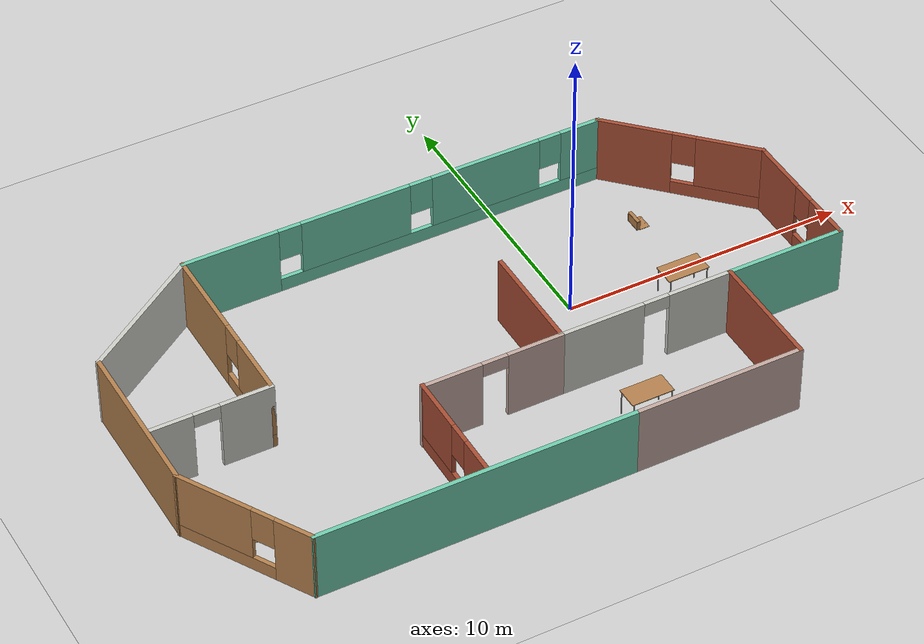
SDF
<sdf version="1.6">
 <world name="default">
  <light name="sun" type="directional">
   <pose>0 0 10 0 -0 0</pose>
   <diffuse>0.8 0.8 0.8 1</diffuse>
   <specular>0.2 0.2 0.2 1</specular>
   <attenuation>
    <range>1000</range>
    <constant>0.9</constant>
    <linear>0.01</linear>
    <quadratic>0.001</quadratic>
   </attenuation>
   <direction>-0.5 0.1 -0.9</direction>
  </light>
  <model name="ground_plane">
   <static>1</static>
   <link name="link">
    <collision name="collision">
     <geometry><plane><normal>0 0 1</normal><size>100 100</size></plane></geometry>
     <surface><friction><ode><mu>100</mu><mu2>50</mu2></ode></friction></surface>
    </collision>
    <visual name="visual">
     <cast_shadows>0</cast_shadows>
     <geometry><plane><normal>0 0 1</normal><size>100 100</size></plane></geometry>
     <material>
      <script><uri>file://media/materials/scripts/gazebo.material</uri><name>Gazebo/Grey</name></script>
     </material>
    </visual>
   </link>
  </model>
  <gravity>0 0 -9.8</gravity>
  <magnetic_field>6e-06 2.3e-05 -4.2e-05</magnetic_field>
  <atmosphere type="adiabatic"/>
  <physics name="default_physics" default="0" type="ode">
   <max_step_size>0.001</max_step_size>
   <real_time_factor>1</real_time_factor>
   <real_time_update_rate>1000</real_time_update_rate>
  </physics>
  <scene><ambient>0.4 0.4 0.4 1</ambient><background>0.7 0.7 0.7 1</background><shadows>1</shadows></scene>
  <spherical_coordinates>
   <surface_model>EARTH_WGS84</surface_model>
   <latitude_deg>0</latitude_deg>
   <longitude_deg>0</longitude_deg>
   <elevation>0</elevation>
   <heading_deg>0</heading_deg>
  </spherical_coordinates>
  <model name="Ammar2">
   <pose>-3.62577 -1.02243 0 0 -0 0</pose>
   <link name="Wall_10">
    <collision name="Wall_10_Collision">
     <geometry><box><size>5.75 0.15 2.5</size></box></geometry>
     <pose>0 0 1.25 0 -0 0</pose>
    </collision>
    <visual name="Wall_10_Visual">
     <pose>0 0 1.25 0 -0 0</pose>
     <geometry><box><size>5.75 0.15 2.5</size></box></geometry>
     <material>
      <script><uri>file://media/materials/scripts/gazebo.material</uri><name>Gazebo/Wood</name></script>
      <ambient>1 1 1 1</ambient>
     </material>
     <meta><layer>0</layer></meta>
    </visual>
    <pose>-11.6134 0.668517 0 0 -0 1.5708</pose>
   </link>
   <link name="Wall_11">
    <collision name="Wall_11_Collision">
     <geometry><box><size>5.20233 0.15 2.5</size></box></geometry>
     <pose>0 0 1.25 0 -0 0</pose>
    </collision>
    <visual name="Wall_11_Visual">
     <pose>0 0 1.25 0 -0 0</pose>
     <geometry><box><size>5.20233 0.15 2.5</size></box></geometry>
     <material>
      <script><uri>file://media/materials/scripts/gazebo.material</uri><name>Gazebo/CeilingTiled</name></script>
      <ambient>1 1 1 1</ambient>
     </material>
     <meta><layer>0</layer></meta>
    </visual>
    <pose>-9.53079 4.8983 0 0 -0 0.601635</pose>
   </link>
   <link name="Wall_14">
    <pose>4.46161 -2.23171 0 0 -0 3.14159</pose>
    <visual name="Wall_14_Visual_0">
     <pose>-1.95719 0 1.25 0 -0 0</pose>
     <geometry><box><size>2.33562 0.15 2.5</size></box></geometry>
     <material>
      <script><uri>file://media/materials/scripts/gazebo.material</uri><name>Gazebo/CeilingTiled</name></script>
      <ambient>0.435294 0.796078 0.67451 1</ambient>
     </material>
     <meta><layer>0</layer></meta>
    </visual>
    <collision name="Wall_14_Collision_0">
     <geometry><box><size>2.33562 0.15 2.5</size></box></geometry>
     <pose>-1.95719 0 1.25 0 -0 0</pose>
    </collision>
    <visual name="Wall_14_Visual_1">
     <pose>1.61781 0 1.25 0 -0 0</pose>
     <geometry><box><size>3.01438 0.15 2.5</size></box></geometry>
     <material>
      <script><uri>file://media/materials/scripts/gazebo.material</uri><name>Gazebo/CeilingTiled</name></script>
      <ambient>0.435294 0.796078 0.67451 1</ambient>
     </material>
     <meta><layer>0</layer></meta>
    </visual>
    <collision name="Wall_14_Collision_1">
     <geometry><box><size>3.01438 0.15 2.5</size></box></geometry>
     <pose>1.61781 0 1.25 0 -0 0</pose>
    </collision>
    <visual name="Wall_14_Visual_2">
     <pose>-0.339383 0 2.25 0 -0 0</pose>
     <geometry><box><size>0.9 0.15 0.5</size></box></geometry>
     <material>
      <script><uri>file://media/materials/scripts/gazebo.material</uri><name>Gazebo/CeilingTiled</name></script>
      <ambient>0.435294 0.796078 0.67451 1</ambient>
     </material>
     <meta><layer>0</layer></meta>
    </visual>
    <collision name="Wall_14_Collision_2">
     <geometry><box><size>0.9 0.15 0.5</size></box></geometry>
     <pose>-0.339383 0 2.25 0 -0 0</pose>
    </collision>
   </link>
   <link name="Wall_15">
    <collision name="Wall_15_Collision">
     <geometry><box><size>4 0.15 2.5</size></box></geometry>
     <pose>0 0 1.25 0 -0 0</pose>
    </collision>
    <visual name="Wall_15_Visual">
     <pose>0 0 1.25 0 -0 0</pose>
     <geometry><box><size>4 0.15 2.5</size></box></geometry>
     <material>
      <script><uri>file://media/materials/scripts/gazebo.material</uri><name>Gazebo/Bricks</name></script>
      <ambient>0.760784 0.662745 0.627451 1</ambient>
     </material>
     <meta><layer>0</layer></meta>
    </visual>
    <pose>1.41161 -0.306706 0 0 -0 1.5708</pose>
   </link>
   <link name="Wall_17">
    <pose>-3.41847 -4.25285 0 0 -0 1.5708</pose>
    <visual name="Wall_17_Visual_0">
     <pose>-1.42299 0 1.25 0 -0 0</pose>
     <geometry><box><size>1.40401 0.15 2.5</size></box></geometry>
     <material>
      <script><uri>file://media/materials/scripts/gazebo.material</uri><name>Gazebo/Bricks</name></script>
      <ambient>1 1 1 1</ambient>
     </material>
     <meta><layer>0</layer></meta>
    </visual>
    <collision name="Wall_17_Collision_0">
     <geometry><box><size>1.40401 0.15 2.5</size></box></geometry>
     <pose>-1.42299 0 1.25 0 -0 0</pose>
    </collision>
    <visual name="Wall_17_Visual_1">
     <pose>0.702006 0 0.25 0 -0 0</pose>
     <geometry><box><size>2.84599 0.15 0.5</size></box></geometry>
     <material>
      <script><uri>file://media/materials/scripts/gazebo.material</uri><name>Gazebo/Bricks</name></script>
      <ambient>1 1 1 1</ambient>
     </material>
     <meta><layer>0</layer></meta>
    </visual>
    <collision name="Wall_17_Collision_1">
     <geometry><box><size>2.84599 0.15 0.5</size></box></geometry>
     <pose>0.702006 0 0.25 0 -0 0</pose>
    </collision>
    <visual name="Wall_17_Visual_2">
     <pose>1.10201 0 1.5 0 -0 0</pose>
     <geometry><box><size>2.04599 0.15 2</size></box></geometry>
     <material>
      <script><uri>file://media/materials/scripts/gazebo.material</uri><name>Gazebo/Bricks</name></script>
      <ambient>1 1 1 1</ambient>
     </material>
     <meta><layer>0</layer></meta>
    </visual>
    <collision name="Wall_17_Collision_2">
     <geometry><box><size>2.04599 0.15 2</size></box></geometry>
     <pose>1.10201 0 1.5 0 -0 0</pose>
    </collision>
    <visual name="Wall_17_Visual_3">
     <pose>-0.320987 0 1.9 0 -0 0</pose>
     <geometry><box><size>0.8 0.15 1.2</size></box></geometry>
     <material>
      <script><uri>file://media/materials/scripts/gazebo.material</uri><name>Gazebo/Bricks</name></script>
      <ambient>1 1 1 1</ambient>
     </material>
     <meta><layer>0</layer></meta>
    </visual>
    <collision name="Wall_17_Collision_3">
     <geometry><box><size>0.8 0.15 1.2</size></box></geometry>
     <pose>-0.320987 0 1.9 0 -0 0</pose>
    </collision>
   </link>
   <link name="Wall_19">
    <pose>-7.44819 3.15309 0 0 0 -1.5708</pose>
    <visual name="Wall_19_Visual_0">
     <pose>-1.59246 0 1.25 0 -0 0</pose>
     <geometry><box><size>3.31507 0.15 2.5</size></box></geometry>
     <material>
      <script><uri>file://media/materials/scripts/gazebo.material</uri><name>Gazebo/Wood</name></script>
      <ambient>1 1 1 1</ambient>
     </material>
     <meta><layer>0</layer></meta>
    </visual>
    <collision name="Wall_19_Collision_0">
     <geometry><box><size>3.31507 0.15 2.5</size></box></geometry>
     <pose>-1.59246 0 1.25 0 -0 0</pose>
    </collision>
    <visual name="Wall_19_Visual_1">
     <pose>1.65754 0 0.25 0 -0 0</pose>
     <geometry><box><size>3.18493 0.15 0.5</size></box></geometry>
     <material>
      <script><uri>file://media/materials/scripts/gazebo.material</uri><name>Gazebo/Wood</name></script>
      <ambient>1 1 1 1</ambient>
     </material>
     <meta><layer>0</layer></meta>
    </visual>
    <collision name="Wall_19_Collision_1">
     <geometry><box><size>3.18493 0.15 0.5</size></box></geometry>
     <pose>1.65754 0 0.25 0 -0 0</pose>
    </collision>
    <visual name="Wall_19_Visual_2">
     <pose>2.05754 0 1.5 0 -0 0</pose>
     <geometry><box><size>2.38493 0.15 2</size></box></geometry>
     <material>
      <script><uri>file://media/materials/scripts/gazebo.material</uri><name>Gazebo/Wood</name></script>
      <ambient>1 1 1 1</ambient>
     </material>
     <meta><layer>0</layer></meta>
    </visual>
    <collision name="Wall_19_Collision_2">
     <geometry><box><size>2.38493 0.15 2</size></box></geometry>
     <pose>2.05754 0 1.5 0 -0 0</pose>
    </collision>
    <visual name="Wall_19_Visual_3">
     <pose>0.465074 0 1.9 0 -0 0</pose>
     <geometry><box><size>0.8 0.15 1.2</size></box></geometry>
     <material>
      <script><uri>file://media/materials/scripts/gazebo.material</uri><name>Gazebo/Wood</name></script>
      <ambient>1 1 1 1</ambient>
     </material>
     <meta><layer>0</layer></meta>
    </visual>
    <collision name="Wall_19_Collision_3">
     <geometry><box><size>0.8 0.15 1.2</size></box></geometry>
     <pose>0.465074 0 1.9 0 -0 0</pose>
    </collision>
   </link>
   <link name="Wall_2">
    <pose>0.101809 6.32809 0 0 -0 0</pose>
    <visual name="Wall_2_Visual_0">
     <pose>-5.91894 0 1.25 0 -0 0</pose>
     <geometry><box><size>3.41212 0.15 2.5</size></box></geometry>
     <material>
      <script><uri>file://media/materials/scripts/gazebo.material</uri><name>Gazebo/Grey</name></script>
      <ambient>0.435294 0.796078 0.67451 1</ambient>
     </material>
     <meta><layer>0</layer></meta>
    </visual>
    <collision name="Wall_2_Collision_0">
     <geometry><box><size>3.41212 0.15 2.5</size></box></geometry>
     <pose>-5.91894 0 1.25 0 -0 0</pose>
    </collision>
    <visual name="Wall_2_Visual_1">
     <pose>1.70606 0 0.25 0 -0 0</pose>
     <geometry><box><size>11.8379 0.15 0.5</size></box></geometry>
     <material>
      <script><uri>file://media/materials/scripts/gazebo.material</uri><name>Gazebo/Grey</name></script>
      <ambient>0.435294 0.796078 0.67451 1</ambient>
     </material>
     <meta><layer>0</layer></meta>
    </visual>
    <collision name="Wall_2_Collision_1">
     <geometry><box><size>11.8379 0.15 0.5</size></box></geometry>
     <pose>1.70606 0 0.25 0 -0 0</pose>
    </collision>
    <visual name="Wall_2_Visual_2">
     <pose>-1.44546 0 1.5 0 -0 0</pose>
     <geometry><box><size>3.93484 0.15 2</size></box></geometry>
     <material>
      <script><uri>file://media/materials/scripts/gazebo.material</uri><name>Gazebo/Grey</name></script>
      <ambient>0.435294 0.796078 0.67451 1</ambient>
     </material>
     <meta><layer>0</layer></meta>
    </visual>
    <collision name="Wall_2_Collision_2">
     <geometry><box><size>3.93484 0.15 2</size></box></geometry>
     <pose>-1.44546 0 1.5 0 -0 0</pose>
    </collision>
    <visual name="Wall_2_Visual_3">
     <pose>3.31597 0 1.5 0 -0 0</pose>
     <geometry><box><size>3.98804 0.15 2</size></box></geometry>
     <material>
      <script><uri>file://media/materials/scripts/gazebo.material</uri><name>Gazebo/Grey</name></script>
      <ambient>0.435294 0.796078 0.67451 1</ambient>
     </material>
     <meta><layer>0</layer></meta>
    </visual>
    <collision name="Wall_2_Collision_3">
     <geometry><box><size>3.98804 0.15 2</size></box></geometry>
     <pose>3.31597 0 1.5 0 -0 0</pose>
    </collision>
    <visual name="Wall_2_Visual_4">
     <pose>6.86749 0 1.5 0 -0 0</pose>
     <geometry><box><size>1.51501 0.15 2</size></box></geometry>
     <material>
      <script><uri>file://media/materials/scripts/gazebo.material</uri><name>Gazebo/Grey</name></script>
      <ambient>0.435294 0.796078 0.67451 1</ambient>
     </material>
     <meta><layer>0</layer></meta>
    </visual>
    <collision name="Wall_2_Collision_4">
     <geometry><box><size>1.51501 0.15 2</size></box></geometry>
     <pose>6.86749 0 1.5 0 -0 0</pose>
    </collision>
    <visual name="Wall_2_Visual_5">
     <pose>-3.81288 0 1.9 0 -0 0</pose>
     <geometry><box><size>0.8 0.15 1.2</size></box></geometry>
     <material>
      <script><uri>file://media/materials/scripts/gazebo.material</uri><name>Gazebo/Grey</name></script>
      <ambient>0.435294 0.796078 0.67451 1</ambient>
     </material>
     <meta><layer>0</layer></meta>
    </visual>
    <collision name="Wall_2_Collision_5">
     <geometry><box><size>0.8 0.15 1.2</size></box></geometry>
     <pose>-3.81288 0 1.9 0 -0 0</pose>
    </collision>
    <visual name="Wall_2_Visual_6">
     <pose>0.921953 0 1.9 0 -0 0</pose>
     <geometry><box><size>0.8 0.15 1.2</size></box></geometry>
     <material>
      <script><uri>file://media/materials/scripts/gazebo.material</uri><name>Gazebo/Grey</name></script>
      <ambient>0.435294 0.796078 0.67451 1</ambient>
     </material>
     <meta><layer>0</layer></meta>
    </visual>
    <collision name="Wall_2_Collision_6">
     <geometry><box><size>0.8 0.15 1.2</size></box></geometry>
     <pose>0.921953 0 1.9 0 -0 0</pose>
    </collision>
    <visual name="Wall_2_Visual_7">
     <pose>5.70999 0 1.9 0 -0 0</pose>
     <geometry><box><size>0.8 0.15 1.2</size></box></geometry>
     <material>
      <script><uri>file://media/materials/scripts/gazebo.material</uri><name>Gazebo/Grey</name></script>
      <ambient>0.435294 0.796078 0.67451 1</ambient>
     </material>
     <meta><layer>0</layer></meta>
    </visual>
    <collision name="Wall_2_Collision_7">
     <geometry><box><size>0.8 0.15 1.2</size></box></geometry>
     <pose>5.70999 0 1.9 0 -0 0</pose>
    </collision>
   </link>
   <link name="Wall_20">
    <pose>-9.49819 -0.021908 0 0 -0 3.14159</pose>
    <visual name="Wall_20_Visual_0">
     <pose>-1.21514 0 1.25 0 -0 0</pose>
     <geometry><box><size>1.81973 0.15 2.5</size></box></geometry>
     <material>
      <script><uri>file://media/materials/scripts/gazebo.material</uri><name>Gazebo/CeilingTiled</name></script>
      <ambient>1 1 1 1</ambient>
     </material>
     <meta><layer>0</layer></meta>
    </visual>
    <collision name="Wall_20_Collision_0">
     <geometry><box><size>1.81973 0.15 2.5</size></box></geometry>
     <pose>-1.21514 0 1.25 0 -0 0</pose>
    </collision>
    <visual name="Wall_20_Visual_1">
     <pose>1.35986 0 1.25 0 -0 0</pose>
     <geometry><box><size>1.53027 0.15 2.5</size></box></geometry>
     <material>
      <script><uri>file://media/materials/scripts/gazebo.material</uri><name>Gazebo/CeilingTiled</name></script>
      <ambient>1 1 1 1</ambient>
     </material>
     <meta><layer>0</layer></meta>
    </visual>
    <collision name="Wall_20_Collision_1">
     <geometry><box><size>1.53027 0.15 2.5</size></box></geometry>
     <pose>1.35986 0 1.25 0 -0 0</pose>
    </collision>
    <visual name="Wall_20_Visual_2">
     <pose>0.144727 0 2.25 0 -0 0</pose>
     <geometry><box><size>0.9 0.15 0.5</size></box></geometry>
     <material>
      <script><uri>file://media/materials/scripts/gazebo.material</uri><name>Gazebo/CeilingTiled</name></script>
      <ambient>1 1 1 1</ambient>
     </material>
     <meta><layer>0</layer></meta>
    </visual>
    <collision name="Wall_20_Collision_2">
     <geometry><box><size>0.9 0.15 0.5</size></box></geometry>
     <pose>0.144727 0 2.25 0 -0 0</pose>
    </collision>
   </link>
   <link name="Wall_22">
    <pose>-1.01339 -2.23171 0 0 -0 3.14159</pose>
    <visual name="Wall_22_Visual_0">
     <pose>-1.50937 0 1.25 0 -0 0</pose>
     <geometry><box><size>1.98126 0.15 2.5</size></box></geometry>
     <material>
      <script><uri>file://media/materials/scripts/gazebo.material</uri><name>Gazebo/Grey</name></script>
      <ambient>0.760784 0.662745 0.627451 1</ambient>
     </material>
     <meta><layer>0</layer></meta>
    </visual>
    <collision name="Wall_22_Collision_0">
     <geometry><box><size>1.98126 0.15 2.5</size></box></geometry>
     <pose>-1.50937 0 1.25 0 -0 0</pose>
    </collision>
    <visual name="Wall_22_Visual_1">
     <pose>1.44063 0 1.25 0 -0 0</pose>
     <geometry><box><size>2.11874 0.15 2.5</size></box></geometry>
     <material>
      <script><uri>file://media/materials/scripts/gazebo.material</uri><name>Gazebo/Grey</name></script>
      <ambient>0.760784 0.662745 0.627451 1</ambient>
     </material>
     <meta><layer>0</layer></meta>
    </visual>
    <collision name="Wall_22_Collision_1">
     <geometry><box><size>2.11874 0.15 2.5</size></box></geometry>
     <pose>1.44063 0 1.25 0 -0 0</pose>
    </collision>
    <visual name="Wall_22_Visual_2">
     <pose>-0.06874 0 2.25 0 -0 0</pose>
     <geometry><box><size>0.9 0.15 0.5</size></box></geometry>
     <material>
      <script><uri>file://media/materials/scripts/gazebo.material</uri><name>Gazebo/Grey</name></script>
      <ambient>0.760784 0.662745 0.627451 1</ambient>
     </material>
     <meta><layer>0</layer></meta>
    </visual>
    <collision name="Wall_22_Collision_2">
     <geometry><box><size>0.9 0.15 0.5</size></box></geometry>
     <pose>-0.06874 0 2.25 0 -0 0</pose>
    </collision>
   </link>
   <link name="Wall_3">
    <pose>9.63171 4.34819 0 0 0 -0.785398</pose>
    <visual name="Wall_3_Visual_0">
     <pose>-1.56407 0 1.25 0 -0 0</pose>
     <geometry><box><size>2.62185 0.15 2.5</size></box></geometry>
     <material>
      <script><uri>file://media/materials/scripts/gazebo.material</uri><name>Gazebo/Bricks</name></script>
      <ambient>1 1 1 1</ambient>
     </material>
     <meta><layer>0</layer></meta>
    </visual>
    <collision name="Wall_3_Collision_0">
     <geometry><box><size>2.62185 0.15 2.5</size></box></geometry>
     <pose>-1.56407 0 1.25 0 -0 0</pose>
    </collision>
    <visual name="Wall_3_Visual_1">
     <pose>1.31093 0 0.25 0 -0 0</pose>
     <geometry><box><size>3.12815 0.15 0.5</size></box></geometry>
     <material>
      <script><uri>file://media/materials/scripts/gazebo.material</uri><name>Gazebo/Bricks</name></script>
      <ambient>1 1 1 1</ambient>
     </material>
     <meta><layer>0</layer></meta>
    </visual>
    <collision name="Wall_3_Collision_1">
     <geometry><box><size>3.12815 0.15 0.5</size></box></geometry>
     <pose>1.31093 0 0.25 0 -0 0</pose>
    </collision>
    <visual name="Wall_3_Visual_2">
     <pose>1.71093 0 1.5 0 -0 0</pose>
     <geometry><box><size>2.32815 0.15 2</size></box></geometry>
     <material>
      <script><uri>file://media/materials/scripts/gazebo.material</uri><name>Gazebo/Bricks</name></script>
      <ambient>1 1 1 1</ambient>
     </material>
     <meta><layer>0</layer></meta>
    </visual>
    <collision name="Wall_3_Collision_2">
     <geometry><box><size>2.32815 0.15 2</size></box></geometry>
     <pose>1.71093 0 1.5 0 -0 0</pose>
    </collision>
    <visual name="Wall_3_Visual_3">
     <pose>0.146854 0 1.9 0 -0 0</pose>
     <geometry><box><size>0.8 0.15 1.2</size></box></geometry>
     <material>
      <script><uri>file://media/materials/scripts/gazebo.material</uri><name>Gazebo/Bricks</name></script>
      <ambient>1 1 1 1</ambient>
     </material>
     <meta><layer>0</layer></meta>
    </visual>
    <collision name="Wall_3_Collision_3">
     <geometry><box><size>0.8 0.15 1.2</size></box></geometry>
     <pose>0.146854 0 1.9 0 -0 0</pose>
    </collision>
   </link>
   <link name="Wall_4">
    <pose>11.6116 0.068294 0 0 0 -1.5708</pose>
    <visual name="Wall_4_Visual_0">
     <pose>-1.28755 0 1.25 0 -0 0</pose>
     <geometry><box><size>2.1749 0.15 2.5</size></box></geometry>
     <material>
      <script><uri>file://media/materials/scripts/gazebo.material</uri><name>Gazebo/Bricks</name></script>
      <ambient>1 1 1 1</ambient>
     </material>
     <meta><layer>0</layer></meta>
    </visual>
    <collision name="Wall_4_Collision_0">
     <geometry><box><size>2.1749 0.15 2.5</size></box></geometry>
     <pose>-1.28755 0 1.25 0 -0 0</pose>
    </collision>
    <visual name="Wall_4_Visual_1">
     <pose>1.08745 0 0.25 0 -0 0</pose>
     <geometry><box><size>2.5751 0.15 0.5</size></box></geometry>
     <material>
      <script><uri>file://media/materials/scripts/gazebo.material</uri><name>Gazebo/Bricks</name></script>
      <ambient>1 1 1 1</ambient>
     </material>
     <meta><layer>0</layer></meta>
    </visual>
    <collision name="Wall_4_Collision_1">
     <geometry><box><size>2.5751 0.15 0.5</size></box></geometry>
     <pose>1.08745 0 0.25 0 -0 0</pose>
    </collision>
    <visual name="Wall_4_Visual_2">
     <pose>1.48745 0 1.5 0 -0 0</pose>
     <geometry><box><size>1.7751 0.15 2</size></box></geometry>
     <material>
      <script><uri>file://media/materials/scripts/gazebo.material</uri><name>Gazebo/Bricks</name></script>
      <ambient>1 1 1 1</ambient>
     </material>
     <meta><layer>0</layer></meta>
    </visual>
    <collision name="Wall_4_Collision_2">
     <geometry><box><size>1.7751 0.15 2</size></box></geometry>
     <pose>1.48745 0 1.5 0 -0 0</pose>
    </collision>
    <visual name="Wall_4_Visual_3">
     <pose>0.199897 0 1.9 0 -0 0</pose>
     <geometry><box><size>0.8 0.15 1.2</size></box></geometry>
     <material>
      <script><uri>file://media/materials/scripts/gazebo.material</uri><name>Gazebo/Bricks</name></script>
      <ambient>1 1 1 1</ambient>
     </material>
     <meta><layer>0</layer></meta>
    </visual>
    <collision name="Wall_4_Collision_3">
     <geometry><box><size>0.8 0.15 1.2</size></box></geometry>
     <pose>0.199897 0 1.9 0 -0 0</pose>
    </collision>
   </link>
   <link name="Wall_5">
    <collision name="Wall_5_Collision">
     <geometry><box><size>4.25 0.15 2.5</size></box></geometry>
     <pose>0 0 1.25 0 -0 0</pose>
    </collision>
    <visual name="Wall_5_Visual">
     <pose>0 0 1.25 0 -0 0</pose>
     <geometry><box><size>4.25 0.15 2.5</size></box></geometry>
     <material>
      <script><uri>file://media/materials/scripts/gazebo.material</uri><name>Gazebo/Grey</name></script>
      <ambient>0.435294 0.796078 0.67451 1</ambient>
     </material>
     <meta><layer>0</layer></meta>
    </visual>
    <pose>9.56161 -2.23171 0 0 -0 3.14159</pose>
   </link>
   <link name="Wall_6">
    <collision name="Wall_6_Collision">
     <geometry><box><size>4.25 0.15 2.5</size></box></geometry>
     <pose>0 0 1.25 0 -0 0</pose>
    </collision>
    <visual name="Wall_6_Visual">
     <pose>0 0 1.25 0 -0 0</pose>
     <geometry><box><size>4.25 0.15 2.5</size></box></geometry>
     <material>
      <script><uri>file://media/materials/scripts/gazebo.material</uri><name>Gazebo/Bricks</name></script>
      <ambient>0.760784 0.662745 0.627451 1</ambient>
     </material>
     <meta><layer>0</layer></meta>
    </visual>
    <pose>7.51161 -4.28171 0 0 0 -1.5708</pose>
   </link>
   <link name="Wall_7">
    <collision name="Wall_7_Collision">
     <geometry><box><size>6 0.15 2.5</size></box></geometry>
     <pose>0 0 1.25 0 -0 0</pose>
    </collision>
    <visual name="Wall_7_Visual">
     <pose>0 0 1.25 0 -0 0</pose>
     <geometry><box><size>6 0.15 2.5</size></box></geometry>
     <material>
      <script><uri>file://media/materials/scripts/gazebo.material</uri><name>Gazebo/Grey</name></script>
      <ambient>0.760784 0.662745 0.627451 1</ambient>
     </material>
     <meta><layer>0</layer></meta>
    </visual>
    <pose>4.58661 -6.33171 0 0 -0 3.14159</pose>
   </link>
   <link name="Wall_8">
    <collision name="Wall_8_Collision">
     <geometry><box><size>11 0.15 2.5</size></box></geometry>
     <pose>0 0 1.25 0 -0 0</pose>
    </collision>
    <visual name="Wall_8_Visual">
     <pose>0 0 1.25 0 -0 0</pose>
     <geometry><box><size>11 0.15 2.5</size></box></geometry>
     <material>
      <script><uri>file://media/materials/scripts/gazebo.material</uri><name>Gazebo/Grey</name></script>
      <ambient>0.435294 0.796078 0.67451 1</ambient>
     </material>
     <meta><layer>0</layer></meta>
    </visual>
    <pose>-3.76339 -6.33171 0 0 -0 3.14159</pose>
   </link>
   <link name="Wall_9">
    <pose>-10.4009 -4.2316 0 0 -0 2.0944</pose>
    <visual name="Wall_9_Visual_0">
     <pose>-1.78008 0 1.25 0 -0 0</pose>
     <geometry><box><size>1.43983 0.15 2.5</size></box></geometry>
     <material>
      <script><uri>file://media/materials/scripts/gazebo.material</uri><name>Gazebo/Wood</name></script>
      <ambient>1 1 1 1</ambient>
     </material>
     <meta><layer>0</layer></meta>
    </visual>
    <collision name="Wall_9_Collision_0">
     <geometry><box><size>1.43983 0.15 2.5</size></box></geometry>
     <pose>-1.78008 0 1.25 0 -0 0</pose>
    </collision>
    <visual name="Wall_9_Visual_1">
     <pose>0.719916 0 0.25 0 -0 0</pose>
     <geometry><box><size>3.56017 0.15 0.5</size></box></geometry>
     <material>
      <script><uri>file://media/materials/scripts/gazebo.material</uri><name>Gazebo/Wood</name></script>
      <ambient>1 1 1 1</ambient>
     </material>
     <meta><layer>0</layer></meta>
    </visual>
    <collision name="Wall_9_Collision_1">
     <geometry><box><size>3.56017 0.15 0.5</size></box></geometry>
     <pose>0.719916 0 0.25 0 -0 0</pose>
    </collision>
    <visual name="Wall_9_Visual_2">
     <pose>1.11992 0 1.5 0 -0 0</pose>
     <geometry><box><size>2.76017 0.15 2</size></box></geometry>
     <material>
      <script><uri>file://media/materials/scripts/gazebo.material</uri><name>Gazebo/Wood</name></script>
      <ambient>1 1 1 1</ambient>
     </material>
     <meta><layer>0</layer></meta>
    </visual>
    <collision name="Wall_9_Collision_2">
     <geometry><box><size>2.76017 0.15 2</size></box></geometry>
     <pose>1.11992 0 1.5 0 -0 0</pose>
    </collision>
    <visual name="Wall_9_Visual_3">
     <pose>-0.660168 0 1.9 0 -0 0</pose>
     <geometry><box><size>0.8 0.15 1.2</size></box></geometry>
     <material>
      <script><uri>file://media/materials/scripts/gazebo.material</uri><name>Gazebo/Wood</name></script>
      <ambient>1 1 1 1</ambient>
     </material>
     <meta><layer>0</layer></meta>
    </visual>
    <collision name="Wall_9_Collision_3">
     <geometry><box><size>0.8 0.15 1.2</size></box></geometry>
     <pose>-0.660168 0 1.9 0 -0 0</pose>
    </collision>
   </link>
   <static>1</static>
  </model>
  <model name="table">
   <static>1</static>
   <link name="link">
    <collision name="surface">
     <pose>0 0 1 0 -0 0</pose>
     <geometry><box><size>1.5 0.8 0.03</size></box></geometry>
     <surface><friction><ode><mu>0.6</mu><mu2>0.6</mu2></ode></friction></surface>
    </collision>
    <visual name="visual1">
     <pose>0 0 1 0 -0 0</pose>
     <geometry><box><size>1.5 0.8 0.03</size></box></geometry>
     <material>
      <script><uri>file://media/materials/scripts/gazebo.material</uri><name>Gazebo/Wood</name></script>
     </material>
    </visual>
    <collision name="front_left_leg">
     <pose>0.68 0.38 0.5 0 -0 0</pose>
     <geometry><cylinder><radius>0.02</radius><length>1</length></cylinder></geometry>
    </collision>
    <visual name="front_left_leg">
     <pose>0.68 0.38 0.5 0 -0 0</pose>
     <geometry><cylinder><radius>0.02</radius><length>1</length></cylinder></geometry>
     <material>
      <script><uri>file://media/materials/scripts/gazebo.material</uri><name>Gazebo/Grey</name></script>
     </material>
    </visual>
    <collision name="front_right_leg">
     <pose>0.68 -0.38 0.5 0 -0 0</pose>
     <geometry><cylinder><radius>0.02</radius><length>1</length></cylinder></geometry>
    </collision>
    <visual name="front_right_leg">
     <pose>0.68 -0.38 0.5 0 -0 0</pose>
     <geometry><cylinder><radius>0.02</radius><length>1</length></cylinder></geometry>
     <material>
      <script><uri>file://media/materials/scripts/gazebo.material</uri><name>Gazebo/Grey</name></script>
     </material>
    </visual>
    <collision name="back_right_leg">
     <pose>-0.68 -0.38 0.5 0 -0 0</pose>
     <geometry><cylinder><radius>0.02</radius><length>1</length></cylinder></geometry>
    </collision>
    <visual name="back_right_leg">
     <pose>-0.68 -0.38 0.5 0 -0 0</pose>
     <geometry><cylinder><radius>0.02</radius><length>1</length></cylinder></geometry>
     <material>
      <script><uri>file://media/materials/scripts/gazebo.material</uri><name>Gazebo/Grey</name></script>
     </material>
    </visual>
    <collision name="back_left_leg">
     <pose>-0.68 0.38 0.5 0 -0 0</pose>
     <geometry><cylinder><radius>0.02</radius><length>1</length></cylinder></geometry>
    </collision>
    <visual name="back_left_leg">
     <pose>-0.68 0.38 0.5 0 -0 0</pose>
     <geometry><cylinder><radius>0.02</radius><length>1</length></cylinder></geometry>
     <material>
      <script><uri>file://media/materials/scripts/gazebo.material</uri><name>Gazebo/Grey</name></script>
     </material>
    </visual>
   </link>
   <pose>3.59934 -0.964649 0 0 -0 0</pose>
  </model>
  <model name="table_0">
   <static>1</static>
   <link name="link">
    <collision name="surface">
     <pose>0 0 1 0 -0 0</pose>
     <geometry><box><size>1.5 0.8 0.03</size></box></geometry>
     <surface><friction><ode><mu>0.6</mu><mu2>0.6</mu2></ode></friction></surface>
    </collision>
    <visual name="visual1">
     <pose>0 0 1 0 -0 0</pose>
     <geometry><box><size>1.5 0.8 0.03</size></box></geometry>
     <material>
      <script><uri>file://media/materials/scripts/gazebo.material</uri><name>Gazebo/Wood</name></script>
     </material>
    </visual>
    <collision name="front_left_leg">
     <pose>0.68 0.38 0.5 0 -0 0</pose>
     <geometry><cylinder><radius>0.02</radius><length>1</length></cylinder></geometry>
    </collision>
    <visual name="front_left_leg">
     <pose>0.68 0.38 0.5 0 -0 0</pose>
     <geometry><cylinder><radius>0.02</radius><length>1</length></cylinder></geometry>
     <material>
      <script><uri>file://media/materials/scripts/gazebo.material</uri><name>Gazebo/Grey</name></script>
     </material>
    </visual>
    <collision name="front_right_leg">
     <pose>0.68 -0.38 0.5 0 -0 0</pose>
     <geometry><cylinder><radius>0.02</radius><length>1</length></cylinder></geometry>
    </collision>
    <visual name="front_right_leg">
     <pose>0.68 -0.38 0.5 0 -0 0</pose>
     <geometry><cylinder><radius>0.02</radius><length>1</length></cylinder></geometry>
     <material>
      <script><uri>file://media/materials/scripts/gazebo.material</uri><name>Gazebo/Grey</name></script>
     </material>
    </visual>
    <collision name="back_right_leg">
     <pose>-0.68 -0.38 0.5 0 -0 0</pose>
     <geometry><cylinder><radius>0.02</radius><length>1</length></cylinder></geometry>
    </collision>
    <visual name="back_right_leg">
     <pose>-0.68 -0.38 0.5 0 -0 0</pose>
     <geometry><cylinder><radius>0.02</radius><length>1</length></cylinder></geometry>
     <material>
      <script><uri>file://media/materials/scripts/gazebo.material</uri><name>Gazebo/Grey</name></script>
     </material>
    </visual>
    <collision name="back_left_leg">
     <pose>-0.68 0.38 0.5 0 -0 0</pose>
     <geometry><cylinder><radius>0.02</radius><length>1</length></cylinder></geometry>
    </collision>
    <visual name="back_left_leg">
     <pose>-0.68 0.38 0.5 0 -0 0</pose>
     <geometry><cylinder><radius>0.02</radius><length>1</length></cylinder></geometry>
     <material>
      <script><uri>file://media/materials/scripts/gazebo.material</uri><name>Gazebo/Grey</name></script>
     </material>
    </visual>
   </link>
   <pose>-0.333108 -5.34162 0 0 -0 0</pose>
  </model>
  <model name="wooden_case">
   <link name="base">
    <pose>0 0 0.024 0 -0 0</pose>
    <inertial>
     <pose>-0.022184 0 0.171592 0 -0 0</pose>
     <mass>3.96264</mass>
     <inertia>
      <ixx>0.213536</ixx>
      <ixy>0</ixy>
      <ixz>0.000779377</ixz>
      <iyy>0.0708943</iyy>
      <iyz>0</iyz>
      <izz>0.154604</izz>
     </inertia>
    </inertial>
    <collision name="collision_back">
     <pose>-0.053975 0 0.1778 0 -0 0</pose>
     <geometry><box><size>0.01905 0.5461 0.3175</size></box></geometry>
     <surface>
      <contact>
       <poissons_ratio>0.347</poissons_ratio>
       <elastic_modulus>8.8e+09</elastic_modulus>
       <ode><kp>100000</kp><kd>100</kd><max_vel>100</max_vel><min_depth>0.001</min_depth></ode>
      </contact>
      <friction>
       <torsional>
        <coefficient>1</coefficient>
        <use_patch_radius>0</use_patch_radius>
        <surface_radius>0.01</surface_radius>
       </torsional>
      </friction>
     </surface>
    </collision>
    <visual name="visual_back">
     <pose>-0.053975 0 0.1778 0 -0 0</pose>
     <geometry><box><size>0.01905 0.5461 0.3175</size></box></geometry>
     <material>
      <script><uri>file://media/materials/scripts/gazebo.material</uri><name>Gazebo/Wood</name></script>
     </material>
    </visual>
    <collision name="collision_bottom">
     <pose>0 0 0.009525 0 -0 0</pose>
     <geometry><box><size>0.127 0.5842 0.01905</size></box></geometry>
     <surface>
      <contact>
       <poissons_ratio>0.347</poissons_ratio>
       <elastic_modulus>8.8e+09</elastic_modulus>
       <ode><kp>100000</kp><kd>100</kd><max_vel>100</max_vel><min_depth>0.001</min_depth></ode>
      </contact>
      <friction>
       <torsional>
        <coefficient>1</coefficient>
        <use_patch_radius>0</use_patch_radius>
        <surface_radius>0.01</surface_radius>
       </torsional>
      </friction>
     </surface>
    </collision>
    <visual name="visual_bottom">
     <pose>0 0 0.009525 0 -0 0</pose>
     <geometry><box><size>0.127 0.5842 0.01905</size></box></geometry>
     <material>
      <script><uri>file://media/materials/scripts/gazebo.material</uri><name>Gazebo/Wood</name></script>
     </material>
    </visual>
    <collision name="collision_top">
     <pose>0 0 0.346075 0 -0 0</pose>
     <geometry><box><size>0.127 0.5842 0.01905</size></box></geometry>
     <surface>
      <contact>
       <poissons_ratio>0.347</poissons_ratio>
       <elastic_modulus>8.8e+09</elastic_modulus>
       <ode><kp>100000</kp><kd>100</kd><max_vel>100</max_vel><min_depth>0.001</min_depth></ode>
      </contact>
      <friction>
       <torsional>
        <coefficient>1</coefficient>
        <use_patch_radius>0</use_patch_radius>
        <surface_radius>0.01</surface_radius>
       </torsional>
      </friction>
     </surface>
    </collision>
    <visual name="visual_top">
     <pose>0 0 0.346075 0 -0 0</pose>
     <geometry><box><size>0.127 0.5842 0.01905</size></box></geometry>
     <material>
      <script><uri>file://media/materials/scripts/gazebo.material</uri><name>Gazebo/Wood</name></script>
     </material>
    </visual>
    <collision name="collision_left">
     <pose>0 -0.282575 0.1778 0 -0 0</pose>
     <geometry><box><size>0.127 0.01905 0.3175</size></box></geometry>
     <surface>
      <contact>
       <poissons_ratio>0.347</poissons_ratio>
       <elastic_modulus>8.8e+09</elastic_modulus>
       <ode><kp>100000</kp><kd>100</kd><max_vel>100</max_vel><min_depth>0.001</min_depth></ode>
      </contact>
      <friction>
       <torsional>
        <coefficient>1</coefficient>
        <use_patch_radius>0</use_patch_radius>
        <surface_radius>0.01</surface_radius>
       </torsional>
      </friction>
     </surface>
    </collision>
    <visual name="visual_left">
     <pose>0 -0.282575 0.1778 0 -0 0</pose>
     <geometry><box><size>0.127 0.01905 0.3175</size></box></geometry>
     <material>
      <script><uri>file://media/materials/scripts/gazebo.material</uri><name>Gazebo/Wood</name></script>
     </material>
    </visual>
    <collision name="collision_right">
     <pose>0 0.282575 0.1778 0 -0 0</pose>
     <geometry><box><size>0.127 0.01905 0.3175</size></box></geometry>
     <surface>
      <contact>
       <poissons_ratio>0.347</poissons_ratio>
       <elastic_modulus>8.8e+09</elastic_modulus>
       <ode><kp>100000</kp><kd>100</kd><max_vel>100</max_vel><min_depth>0.001</min_depth></ode>
      </contact>
      <friction>
       <torsional>
        <coefficient>1</coefficient>
        <use_patch_radius>0</use_patch_radius>
        <surface_radius>0.01</surface_radius>
       </torsional>
      </friction>
     </surface>
    </collision>
    <visual name="visual_right">
     <pose>0 0.282575 0.1778 0 -0 0</pose>
     <geometry><box><size>0.127 0.01905 0.3175</size></box></geometry>
     <material>
      <script><uri>file://media/materials/scripts/gazebo.material</uri><name>Gazebo/Wood</name></script>
     </material>
    </visual>
    <collision name="collision_block_left">
     <pose>0.0095 -0.2151 -0.012 0 -0 0</pose>
     <geometry><box><size>0.108 0.05 0.024</size></box></geometry>
     <surface>
      <contact>
       <poissons_ratio>0.347</poissons_ratio>
       <elastic_modulus>8.8e+09</elastic_modulus>
       <ode><kp>100000</kp><kd>100</kd><max_vel>100</max_vel><min_depth>0.001</min_depth></ode>
      </contact>
      <friction>
       <torsional>
        <coefficient>1</coefficient>
        <use_patch_radius>0</use_patch_radius>
        <surface_radius>0.01</surface_radius>
       </torsional>
      </friction>
     </surface>
    </collision>
    <visual name="visual_block_left">
     <pose>0.0095 -0.2151 -0.012 0 -0 0</pose>
     <geometry><box><size>0.108 0.05 0.024</size></box></geometry>
     <material>
      <script><uri>file://media/materials/scripts/gazebo.material</uri><name>Gazebo/Wood</name></script>
     </material>
    </visual>
    <collision name="collision_block_right">
     <pose>0.0095 0.2151 -0.012 0 -0 0</pose>
     <geometry><box><size>0.108 0.05 0.024</size></box></geometry>
     <surface>
      <contact>
       <poissons_ratio>0.347</poissons_ratio>
       <elastic_modulus>8.8e+09</elastic_modulus>
       <ode><kp>100000</kp><kd>100</kd><max_vel>100</max_vel><min_depth>0.001</min_depth></ode>
      </contact>
      <friction>
       <torsional>
        <coefficient>1</coefficient>
        <use_patch_radius>0</use_patch_radius>
        <surface_radius>0.01</surface_radius>
       </torsional>
      </friction>
     </surface>
    </collision>
    <visual name="visual_block_right">
     <pose>0.0095 0.2151 -0.012 0 -0 0</pose>
     <geometry><box><size>0.108 0.05 0.024</size></box></geometry>
     <material>
      <script><uri>file://media/materials/scripts/gazebo.material</uri><name>Gazebo/Wood</name></script>
     </material>
    </visual>
   </link>
   <link name="lid">
    <pose>0.243775 0 0.009525 0 -0 0</pose>
    <inertial>
     <mass>1.97874</mass>
     <inertia>
      <ixx>0.0563367</ixx>
      <ixy>0</ixy>
      <ixz>0</ixz>
      <iyy>0.020911</iyy>
      <iyz>0</iyz>
      <izz>0.0771281</izz>
     </inertia>
    </inertial>
    <collision name="collision">
     <geometry><box><size>0.3556 0.5842 0.01905</size></box></geometry>
     <surface>
      <contact>
       <poissons_ratio>0.347</poissons_ratio>
       <elastic_modulus>8.8e+09</elastic_modulus>
       <ode><kp>100000</kp><kd>100</kd><max_vel>100</max_vel><min_depth>0.001</min_depth></ode>
      </contact>
      <friction>
       <torsional>
        <coefficient>1</coefficient>
        <use_patch_radius>0</use_patch_radius>
        <surface_radius>0.01</surface_radius>
       </torsional>
      </friction>
     </surface>
    </collision>
    <visual name="visual">
     <geometry><box><size>0.3556 0.5842 0.01905</size></box></geometry>
     <material>
      <script><uri>file://media/materials/scripts/gazebo.material</uri><name>Gazebo/Wood</name></script>
     </material>
    </visual>
    <visual name="tee_nut_1">
     <pose>0.122 -0.216 0 0 -0 0</pose>
     <geometry><cylinder><radius>0.00635</radius><length>0.0192405</length></cylinder></geometry>
     <material>
      <script><uri>file://media/materials/scripts/gazebo.material</uri><name>Gazebo/Grey</name></script>
     </material>
    </visual>
    <visual name="tee_nut_2">
     <pose>0.122 -0.088 0 0 -0 0</pose>
     <geometry><cylinder><radius>0.00635</radius><length>0.0192405</length></cylinder></geometry>
     <material>
      <script><uri>file://media/materials/scripts/gazebo.material</uri><name>Gazebo/Grey</name></script>
     </material>
    </visual>
    <visual name="tee_nut_3">
     <pose>0.122 0.088 0 0 -0 0</pose>
     <geometry><cylinder><radius>0.00635</radius><length>0.0192405</length></cylinder></geometry>
     <material>
      <script><uri>file://media/materials/scripts/gazebo.material</uri><name>Gazebo/Grey</name></script>
     </material>
    </visual>
    <visual name="tee_nut_4">
     <pose>0.122 0.216 0 0 -0 0</pose>
     <geometry><cylinder><radius>0.00635</radius><length>0.0192405</length></cylinder></geometry>
     <material>
      <script><uri>file://media/materials/scripts/gazebo.material</uri><name>Gazebo/Grey</name></script>
     </material>
    </visual>
   </link>
   <joint name="lid_hinge" type="revolute">
    <pose>-0.1778 0 0.01905 0 -0 0</pose>
    <parent>base</parent>
    <child>lid</child>
    <axis>
     <xyz>0 1 0</xyz>
     <limit><upper>0.523599</upper><lower>-1.5708</lower></limit>
     <use_parent_model_frame>0</use_parent_model_frame>
     <dynamics><spring_reference>0</spring_reference><spring_stiffness>0</spring_stiffness></dynamics>
    </axis>
   </joint>
   <pose>3.888 2.57445 -0.001057 0 -0.000429 0</pose>
  </model>
  <model name="wooden_case_wooden_peg">
   <link name="wooden_case::base">
    <pose>0 0 0.024 0 -0 0</pose>
    <inertial>
     <pose>-0.022184 0 0.171592 0 -0 0</pose>
     <mass>3.96264</mass>
     <inertia>
      <ixx>0.213536</ixx>
      <ixy>0</ixy>
      <ixz>0.000779377</ixz>
      <iyy>0.0708943</iyy>
      <iyz>0</iyz>
      <izz>0.154604</izz>
     </inertia>
    </inertial>
    <collision name="collision_back">
     <pose>-0.053975 0 0.1778 0 -0 0</pose>
     <geometry><box><size>0.01905 0.5461 0.3175</size></box></geometry>
     <surface>
      <contact>
       <poissons_ratio>0.347</poissons_ratio>
       <elastic_modulus>8.8e+09</elastic_modulus>
       <ode><kp>100000</kp><kd>100</kd><max_vel>100</max_vel><min_depth>0.001</min_depth></ode>
      </contact>
      <friction>
       <torsional>
        <coefficient>1</coefficient>
        <use_patch_radius>0</use_patch_radius>
        <surface_radius>0.01</surface_radius>
       </torsional>
      </friction>
     </surface>
    </collision>
    <visual name="visual_back">
     <pose>-0.053975 0 0.1778 0 -0 0</pose>
     <geometry><box><size>0.01905 0.5461 0.3175</size></box></geometry>
     <material>
      <script><uri>file://media/materials/scripts/gazebo.material</uri><name>Gazebo/Wood</name></script>
     </material>
    </visual>
    <collision name="collision_bottom">
     <pose>0 0 0.009525 0 -0 0</pose>
     <geometry><box><size>0.127 0.5842 0.01905</size></box></geometry>
     <surface>
      <contact>
       <poissons_ratio>0.347</poissons_ratio>
       <elastic_modulus>8.8e+09</elastic_modulus>
       <ode><kp>100000</kp><kd>100</kd><max_vel>100</max_vel><min_depth>0.001</min_depth></ode>
      </contact>
      <friction>
       <torsional>
        <coefficient>1</coefficient>
        <use_patch_radius>0</use_patch_radius>
        <surface_radius>0.01</surface_radius>
       </torsional>
      </friction>
     </surface>
    </collision>
    <visual name="visual_bottom">
     <pose>0 0 0.009525 0 -0 0</pose>
     <geometry><box><size>0.127 0.5842 0.01905</size></box></geometry>
     <material>
      <script><uri>file://media/materials/scripts/gazebo.material</uri><name>Gazebo/Wood</name></script>
     </material>
    </visual>
    <collision name="collision_top">
     <pose>0 0 0.346075 0 -0 0</pose>
     <geometry><box><size>0.127 0.5842 0.01905</size></box></geometry>
     <surface>
      <contact>
       <poissons_ratio>0.347</poissons_ratio>
       <elastic_modulus>8.8e+09</elastic_modulus>
       <ode><kp>100000</kp><kd>100</kd><max_vel>100</max_vel><min_depth>0.001</min_depth></ode>
      </contact>
      <friction>
       <torsional>
        <coefficient>1</coefficient>
        <use_patch_radius>0</use_patch_radius>
        <surface_radius>0.01</surface_radius>
       </torsional>
      </friction>
     </surface>
    </collision>
    <visual name="visual_top">
     <pose>0 0 0.346075 0 -0 0</pose>
     <geometry><box><size>0.127 0.5842 0.01905</size></box></geometry>
     <material>
      <script><uri>file://media/materials/scripts/gazebo.material</uri><name>Gazebo/Wood</name></script>
     </material>
    </visual>
    <collision name="collision_left">
     <pose>0 -0.282575 0.1778 0 -0 0</pose>
     <geometry><box><size>0.127 0.01905 0.3175</size></box></geometry>
     <surface>
      <contact>
       <poissons_ratio>0.347</poissons_ratio>
       <elastic_modulus>8.8e+09</elastic_modulus>
       <ode><kp>100000</kp><kd>100</kd><max_vel>100</max_vel><min_depth>0.001</min_depth></ode>
      </contact>
      <friction>
       <torsional>
        <coefficient>1</coefficient>
        <use_patch_radius>0</use_patch_radius>
        <surface_radius>0.01</surface_radius>
       </torsional>
      </friction>
     </surface>
    </collision>
    <visual name="visual_left">
     <pose>0 -0.282575 0.1778 0 -0 0</pose>
     <geometry><box><size>0.127 0.01905 0.3175</size></box></geometry>
     <material>
      <script><uri>file://media/materials/scripts/gazebo.material</uri><name>Gazebo/Wood</name></script>
     </material>
    </visual>
    <collision name="collision_right">
     <pose>0 0.282575 0.1778 0 -0 0</pose>
     <geometry><box><size>0.127 0.01905 0.3175</size></box></geometry>
     <surface>
      <contact>
       <poissons_ratio>0.347</poissons_ratio>
       <elastic_modulus>8.8e+09</elastic_modulus>
       <ode><kp>100000</kp><kd>100</kd><max_vel>100</max_vel><min_depth>0.001</min_depth></ode>
      </contact>
      <friction>
       <torsional>
        <coefficient>1</coefficient>
        <use_patch_radius>0</use_patch_radius>
        <surface_radius>0.01</surface_radius>
       </torsional>
      </friction>
     </surface>
    </collision>
    <visual name="visual_right">
     <pose>0 0.282575 0.1778 0 -0 0</pose>
     <geometry><box><size>0.127 0.01905 0.3175</size></box></geometry>
     <material>
      <script><uri>file://media/materials/scripts/gazebo.material</uri><name>Gazebo/Wood</name></script>
     </material>
    </visual>
    <collision name="collision_block_left">
     <pose>0.0095 -0.2151 -0.012 0 -0 0</pose>
     <geometry><box><size>0.108 0.05 0.024</size></box></geometry>
     <surface>
      <contact>
       <poissons_ratio>0.347</poissons_ratio>
       <elastic_modulus>8.8e+09</elastic_modulus>
       <ode><kp>100000</kp><kd>100</kd><max_vel>100</max_vel><min_depth>0.001</min_depth></ode>
      </contact>
      <friction>
       <torsional>
        <coefficient>1</coefficient>
        <use_patch_radius>0</use_patch_radius>
        <surface_radius>0.01</surface_radius>
       </torsional>
      </friction>
     </surface>
    </collision>
    <visual name="visual_block_left">
     <pose>0.0095 -0.2151 -0.012 0 -0 0</pose>
     <geometry><box><size>0.108 0.05 0.024</size></box></geometry>
     <material>
      <script><uri>file://media/materials/scripts/gazebo.material</uri><name>Gazebo/Wood</name></script>
     </material>
    </visual>
    <collision name="collision_block_right">
     <pose>0.0095 0.2151 -0.012 0 -0 0</pose>
     <geometry><box><size>0.108 0.05 0.024</size></box></geometry>
     <surface>
      <contact>
       <poissons_ratio>0.347</poissons_ratio>
       <elastic_modulus>8.8e+09</elastic_modulus>
       <ode><kp>100000</kp><kd>100</kd><max_vel>100</max_vel><min_depth>0.001</min_depth></ode>
      </contact>
      <friction>
       <torsional>
        <coefficient>1</coefficient>
        <use_patch_radius>0</use_patch_radius>
        <surface_radius>0.01</surface_radius>
       </torsional>
      </friction>
     </surface>
    </collision>
    <visual name="visual_block_right">
     <pose>0.0095 0.2151 -0.012 0 -0 0</pose>
     <geometry><box><size>0.108 0.05 0.024</size></box></geometry>
     <material>
      <script><uri>file://media/materials/scripts/gazebo.material</uri><name>Gazebo/Wood</name></script>
     </material>
    </visual>
   </link>
   <link name="wooden_case::lid">
    <pose>0.243775 0 0.009525 0 -0 0</pose>
    <inertial>
     <mass>1.97874</mass>
     <inertia>
      <ixx>0.0563367</ixx>
      <ixy>0</ixy>
      <ixz>0</ixz>
      <iyy>0.020911</iyy>
      <iyz>0</iyz>
      <izz>0.0771281</izz>
     </inertia>
    </inertial>
    <collision name="collision">
     <geometry><box><size>0.3556 0.5842 0.01905</size></box></geometry>
     <surface>
      <contact>
       <poissons_ratio>0.347</poissons_ratio>
       <elastic_modulus>8.8e+09</elastic_modulus>
       <ode><kp>100000</kp><kd>100</kd><max_vel>100</max_vel><min_depth>0.001</min_depth></ode>
      </contact>
      <friction>
       <torsional>
        <coefficient>1</coefficient>
        <use_patch_radius>0</use_patch_radius>
        <surface_radius>0.01</surface_radius>
       </torsional>
      </friction>
     </surface>
    </collision>
    <visual name="visual">
     <geometry><box><size>0.3556 0.5842 0.01905</size></box></geometry>
     <material>
      <script><uri>file://media/materials/scripts/gazebo.material</uri><name>Gazebo/Wood</name></script>
     </material>
    </visual>
    <visual name="tee_nut_1">
     <pose>0.122 -0.216 0 0 -0 0</pose>
     <geometry><cylinder><radius>0.00635</radius><length>0.0192405</length></cylinder></geometry>
     <material>
      <script><uri>file://media/materials/scripts/gazebo.material</uri><name>Gazebo/Grey</name></script>
     </material>
    </visual>
    <visual name="tee_nut_2">
     <pose>0.122 -0.088 0 0 -0 0</pose>
     <geometry><cylinder><radius>0.00635</radius><length>0.0192405</length></cylinder></geometry>
     <material>
      <script><uri>file://media/materials/scripts/gazebo.material</uri><name>Gazebo/Grey</name></script>
     </material>
    </visual>
    <visual name="tee_nut_3">
     <pose>0.122 0.088 0 0 -0 0</pose>
     <geometry><cylinder><radius>0.00635</radius><length>0.0192405</length></cylinder></geometry>
     <material>
      <script><uri>file://media/materials/scripts/gazebo.material</uri><name>Gazebo/Grey</name></script>
     </material>
    </visual>
    <visual name="tee_nut_4">
     <pose>0.122 0.216 0 0 -0 0</pose>
     <geometry><cylinder><radius>0.00635</radius><length>0.0192405</length></cylinder></geometry>
     <material>
      <script><uri>file://media/materials/scripts/gazebo.material</uri><name>Gazebo/Grey</name></script>
     </material>
    </visual>
   </link>
   <joint name="wooden_case::lid_hinge" type="revolute">
    <pose>-0.1778 0 0.01905 0 -0 0</pose>
    <parent>wooden_case::base</parent>
    <child>wooden_case::lid</child>
    <axis>
     <xyz>0 1 0</xyz>
     <limit><upper>0.523599</upper><lower>-1.5708</lower></limit>
     <use_parent_model_frame>0</use_parent_model_frame>
     <dynamics><spring_reference>0</spring_reference><spring_stiffness>0</spring_stiffness></dynamics>
    </axis>
   </joint>
   <link name="peg::link">
    <pose>0.365774 0.216 0.05905 0 -0 0</pose>
    <inertial>
     <mass>0.0175</mass>
     <inertia>
      <ixx>9.74923e-06</ixx>
      <ixy>0</ixy>
      <ixz>0</ixz>
      <iyy>9.74923e-06</iyy>
      <iyz>0</iyz>
      <izz>8.31797e-07</izz>
     </inertia>
    </inertial>
    <collision name="collision">
     <geometry><cylinder><radius>0.00975</radius><length>0.08</length></cylinder></geometry>
     <surface>
      <contact>
       <poissons_ratio>0.347</poissons_ratio>
       <elastic_modulus>8.8e+09</elastic_modulus>
       <ode><kp>100000</kp><kd>100</kd><max_vel>100</max_vel><min_depth>0.001</min_depth></ode>
      </contact>
      <friction>
       <torsional>
        <coefficient>1</coefficient>
        <use_patch_radius>0</use_patch_radius>
        <surface_radius>0.01</surface_radius>
       </torsional>
      </friction>
     </surface>
    </collision>
    <visual name="visual">
     <geometry><cylinder><radius>0.00975</radius><length>0.08</length></cylinder></geometry>
     <material>
      <script><uri>file://media/materials/scripts/gazebo.material</uri><name>Gazebo/Wood</name></script>
     </material>
    </visual>
   </link>
   <joint name="case_peg" type="revolute">
    <child>peg::link</child>
    <parent>wooden_case::lid</parent>
    <axis>
     <xyz>0 0 1</xyz>
     <limit><upper>0</upper><lower>0</lower></limit>
     <use_parent_model_frame>0</use_parent_model_frame>
     <dynamics><spring_reference>0</spring_reference><spring_stiffness>0</spring_stiffness></dynamics>
    </axis>
   </joint>
   <pose>-13.596 -4.25509 -0.001057 -1e-06 -0.000429 0</pose>
  </model>
 </world>
</sdf>
